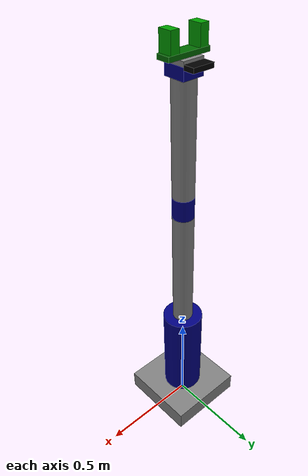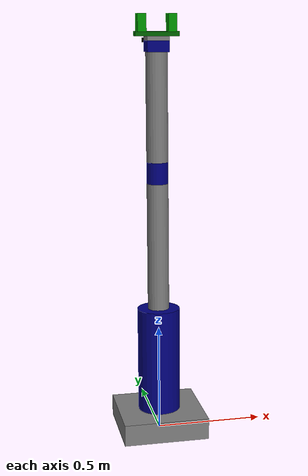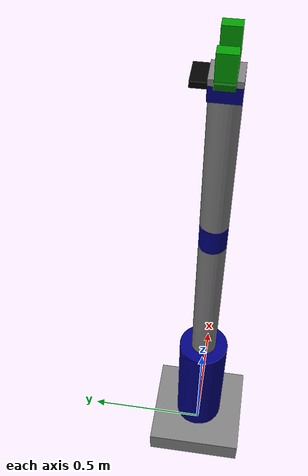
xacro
<?xml version="1.0"?>
<robot xmlns:xacro="http://www.ros.org/wiki/xacro" name="my_robot">
    <xacro:arg name="initial_positions_file" default="initial_positions.yaml" />

    <!-- Import my_robot urdf file -->
    <xacro:include filename="$(find myrobot_description)/urdf/my_robot.urdf.xacro" />

    <!-- Import control_xacro -->
    <xacro:include filename="my_robot.ros2_control.xacro" />

    <xacro:my_robot_ros2_control name="FakeSystem" initial_positions_file="$(arg initial_positions_file)"/>

</robot>

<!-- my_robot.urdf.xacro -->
<robot name="my_robot" xmlns:xacro="http://www.ros.org/wiki/xacro">

<xacro:include filename="$(find myrobot_description)/urdf/common_properties.xacro" />
<xacro:include filename="$(find myrobot_description)/urdf/arm.xacro" />
<xacro:include filename="$(find myrobot_description)/urdf/gripper.xacro" />
<xacro:include filename="$(find myrobot_description)/urdf/gazebo.xacro" />
<xacro:include filename="$(find myrobot_description)/urdf/camera.xacro" />

    <link name="world"/>

    <joint name="fixed" type="fixed">
        <parent link="world"/>
        <child link="base_link"/>
    </joint>

    <joint name="gripper_base_joint" type="fixed">
        <parent link="tool_link" />
        <child link="gripper_base_link" />
        <origin xyz="0 0 0" rpy="0 0 0" />
    </joint>

     <joint name="camera_joint" type="fixed">
        <parent link="hand_link" />
        <child link="camera_link" />
        <origin xyz="0.0 0.075 0.0" rpy="${-pi/2} ${-pi/2} 0.0" />
    </joint>

</robot>

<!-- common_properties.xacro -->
<robot xmlns:xacro="http://www.ros.org/wiki/xacro">

    <material name="gray">
        <color rgba="0.5 0.5 0.5 1" />
    </material>

    <material name="blue">
        <color rgba="0 0 0.5 1" />
    </material>

    <material name="dark_green">
        <color rgba="0 0.4 0 1" />
    </material>

    <material name="Light_green">
        <color rgba="0 0.6 0 1" />
    </material>

    <material name="black">
        <color rgba="0.0 0.0 0.0 1.0" />
    </material>

</robot>

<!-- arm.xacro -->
<robot xmlns:xacro="http://www.ros.org/wiki/xacro">

    <link name="base_link">
        <visual>
            <geometry>
                <box size="0.4 0.4 0.1"/>
            </geometry>
            <origin xyz="0 0 0.05" rpy="0 0 0" />
            <material name="gray" />
        </visual>
        <collision>
           <geometry>
                <box size="0.4 0.4 0.1"/>
            </geometry>
            <origin xyz="0 0 0.05" rpy="0 0 0" />
        </collision>
        <inertial>
            <mass value="4.32" />
            <inertia ixx="0.058" ixy="0" ixz="0" iyy="0.058" iyz="0" izz="0.115" />
            <origin xyz="0 0 0.05" />
        </inertial>

    </link>

    <link name="shoulder_link">
        <visual>
            <geometry>
                <cylinder radius="0.1" length="0.5"/>
            </geometry>
            <origin xyz="0 0 0.25" rpy="0 0 0" />
            <material name="blue" />
        </visual>
        <collision>
           <geometry>
                <box size="0.2 0.2 0.5" />
            </geometry>
            <origin xyz="0 0 0.25" rpy="0 0 0" />
        </collision>
        <inertial>
            <mass value="4.24" />
            <inertia ixx="0.089" ixy="0" ixz="0" iyy="0.089" iyz="0" izz="0.043" />
            <origin xyz="0 0 0.25" />
        </inertial>
    </link>

    <link name="arm_link">
        <visual>
            <geometry>
                <cylinder radius="0.05" length="0.6" />
            </geometry>
            <origin xyz="0 0 0.3" rpy="0 0 0" />
            <material name="gray" />
        </visual>
        <collision>
           <geometry>
                <box size="0.1 0.1 0.6" />
            </geometry>
            <origin xyz="0 0 0.3" rpy="0 0 0" />
        </collision>
        <inertial>
            <mass value="1.27" />
            <inertia ixx="0.038" ixy="0" ixz="0" iyy="0.038" iyz="0" izz="0.0016" />
            <origin xyz="0 0 0.3" />
        </inertial>
    </link>

    <link name="elbow_link">
         <visual>
            <geometry>
                <cylinder radius="0.05" length="0.1" />
            </geometry>
            <origin xyz="0 0 0.05" rpy="0 0 0" />
            <material name="blue" />
        </visual>
        <collision>
            <geometry>
                <box size="0.1 0.1 0.1" />
            </geometry>
            <origin xyz="0 0 0.05" rpy="0 0 0" />
        </collision>
        <inertial>
            <mass value="0.21" />
            <inertia ixx="0.00035" ixy="0" ixz="0" iyy="0.00035" iyz="0" izz="0.00018" />
            <origin xyz="0 0 0.05" />
        </inertial>
    </link>

    <link name="forearm_link">
         <visual>
            <geometry>
                <cylinder radius="0.05" length="0.5" />
            </geometry>
            <origin xyz="0 0 0.25" rpy="0 0 0" />
            <material name="gray" />
        </visual>
        <collision>
            <geometry>
                <box size="0.1 0.1 0.5" />
            </geometry>
            <origin xyz="0 0 0.25" rpy="0 0 0" />
        </collision>
        <inertial>
            <mass value="1.06" />
            <inertia ixx="0.022" ixy="0" ixz="0" iyy="0.022" iyz="0" izz="0.0013" />
            <origin xyz="0 0 0.25" />
        </inertial>
    </link>

    <link name="wrist_link">
         <visual>
            <geometry>
                <box size="0.1 0.1 0.05" />
            </geometry>
            <origin xyz="0 0 0.025" rpy="0 0 0" />
            <material name="blue" />
        </visual>
        <collision>
           <geometry>
                <box size="0.1 0.1 0.05" />
            </geometry>
            <origin xyz="0 0 0.025" rpy="0 0 0" />
        </collision>
        <inertial>
            <mass value="0.135" />
            <inertia ixx="0.00011" ixy="0" ixz="0" iyy="0.00011" iyz="0" izz="0.00023" />
            <origin xyz="0 0 0.025" />
        </inertial>
    </link>

    <link name="hand_link">
         <visual>
            <geometry>
                <box size="0.1 0.1 0.02" />
            </geometry>
            <origin xyz="0 0 0.01" rpy="0 0 0" />
            <material name="gray" />
        </visual>
        <collision>
           <geometry>
                <box size="0.1 0.1 0.02" />
            </geometry>
            <origin xyz="0 0 0.01" rpy="0 0 0" />
        </collision>
        <inertial>
            <mass value="0.054" />
            <inertia ixx="0.0000045" ixy="0" ixz="0" iyy="0.0000045" iyz="0" izz="0.000009" />
            <origin xyz="0 0 0.01" />
        </inertial>
    </link>

    <link name="tool_link">
        <inertial>
            <mass value="0.01" />
            <inertia ixx="0.000001" ixy="0" ixz="0" iyy="0.000001" iyz="0" izz="0.000001" />
            <origin xyz="0 0 0" />
        </inertial>
    </link>

    <joint name="joint1" type="revolute">
        <parent link="base_link" />
        <child link="shoulder_link" />
        <origin xyz="0 0 0.1" rpy="0 0 0" />
        <axis xyz="0 0 1" />
        <limit effort="1000.0" velocity="1.0" lower="-3.14" upper="3.14" />
    </joint>

    <joint name="joint2" type="revolute">
        <parent link="shoulder_link" />
        <child link="arm_link" />
        <origin xyz="0 0 0.5" rpy="0 0 0" />
        <axis xyz="0 1 0" />
        <limit effort="1000.0" velocity="1.0" lower="0" upper="2.5" />
    </joint>

    <joint name="joint3" type="revolute">
        <parent link="arm_link" />
        <child link="elbow_link" />
        <origin xyz="0 0 0.6" rpy="0 0 0" />
        <axis xyz="0 1 0" />
        <limit effort="1000.0" velocity="1.0" lower="0" upper="2.5" />
    </joint>

    <joint name="joint4" type="revolute">
        <parent link="elbow_link" />
        <child link="forearm_link" />
        <origin xyz="0 0 0.1" rpy="0 0 0" />
        <axis xyz="0 0 1" />
        <limit effort="1000.0" velocity="1.0" lower="-3.14" upper="3.14" />
    </joint>

    <joint name="joint5" type="revolute">
        <parent link="forearm_link" />
        <child link="wrist_link" />
        <origin xyz="0 0 0.5" rpy="0 0 0" />
        <axis xyz="0 1 0" />
        <limit effort="1000.0" velocity="1.0" lower="-1.57" upper="1.57" />
    </joint>

    <joint name="joint6" type="continuous">
        <parent link="wrist_link" />
        <child link="hand_link" />
        <origin xyz="0 0 0.05" rpy="0 0 0" />
        <axis xyz="0 0 1" />
    </joint>

    <joint name="hand_tool_joint" type="fixed">
        <parent link="hand_link" />
        <child link="tool_link" />
        <origin xyz="0 0 0.02" rpy="0 0 0" />
    </joint>
</robot>

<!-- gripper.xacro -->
<robot xmlns:xacro="http://www.ros.org/wiki/xacro">

    <link name="gripper_base_link">
        <visual>
            <geometry>
                <box size="0.2 0.06 0.02" />
            </geometry>
            <origin xyz="0 0 0.01" rpy="0 0 0" />
            <material name="dark_green" />
        </visual>
        <collision>
           <geometry>
                <box size="0.2 0.06 0.02" />
            </geometry>
            <origin xyz="0 0 0.01" rpy="0 0 0" />
        </collision>
        <inertial>
            <mass value="0.0648" />
            <inertia ixx="0.000021" ixy="0" ixz="0" iyy="0.000216" iyz="0" izz="0.000216" />
            <origin xyz="0 0 0.01" />
        </inertial>
    </link>

    <link name="gripper_left_finger_link">
        <visual>
            <geometry>
                <box size="0.04 0.06 0.08" />
            </geometry>
            <origin xyz="0 0 0.04" rpy="0 0 0" />
            <material name="Light_green" />
        </visual>
        <collision>
            <geometry>
                <box size="0.04 0.06 0.08" />
            </geometry>
            <origin xyz="0 0 0.04" rpy="0 0 0" />
        </collision>
        <inertial>
            <mass value="0.05" />
            <inertia ixx="0.0000417" ixy="0" ixz="0" iyy="0.0000333" iyz="0" izz="0.0000217" />
            <origin xyz="0 0 0.04" />
        </inertial>
    </link>

     <link name="gripper_right_finger_link">
        <visual>
            <geometry>
                <box size="0.04 0.06 0.08" />
            </geometry>
            <origin xyz="0 0 0.04" rpy="0 0 0" />
            <material name="Light_green" />
        </visual>
        <collision>
            <geometry>
                <box size="0.04 0.06 0.08" />
            </geometry>
            <origin xyz="0 0 0.04" rpy="0 0 0" />
        </collision>
        <inertial>
            <mass value="0.05" />
            <inertia ixx="0.0000417" ixy="0" ixz="0" iyy="0.0000333" iyz="0" izz="0.0000217" />
            <origin xyz="0 0 0.04" />
        </inertial>
    </link>

    <joint name="gripper_left_finger_joint" type="prismatic">
        <parent link="gripper_base_link" />
        <child link="gripper_left_finger_link" />
        <origin xyz="-0.07 0 0.02" rpy="0 0 0" />
        <axis xyz="1 0 0" />
        <limit effort="1000.0" velocity="1.0" lower="0.0" upper="0.06" />
    </joint>

    <joint name="gripper_right_finger_joint" type="prismatic">
        <parent link="gripper_base_link" />
        <child link="gripper_right_finger_link" />
        <origin xyz="0.07 0 0.02" rpy="0 0 0" />
        <axis xyz="1 0 0" />
        <mimic joint="gripper_left_finger_joint" multiplier="-1.0" />
        <limit effort="1000.0" velocity="1.0" lower="-0.06" upper="0" />
    </joint>

</robot>

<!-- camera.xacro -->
<robot xmlns:xacro="http://www.ros.org/wiki/xacro">
    <link name="camera_link" >
        <visual>
            <geometry>
                <box size="0.02 0.10 0.05"/>
            </geometry>
            <origin xyz="0.0 0.0 0.0" rpy="0.0 0.0 0.0" />
            <material name="black" />
        </visual>

        <collision>
            <geometry>
                <box size="0.02 0.10 0.05"/>
            </geometry>
            <origin xyz="0.0 0.0 0.0" rpy="0.0 0.0 0.0" />
        </collision>

        <inertial>
            <mass value="0.10" />
            <inertia ixx="0.0000867" ixy="0.0" ixz="0.0" iyy="0.0000242" iyz="0.0" izz="0.0001042" />
            <origin xyz="0 0 0.01" />
        </inertial>
    </link>

    <link name="camera_optical_link" >    </link>

    <joint name="camera_optical_joint" type="fixed">
        <parent link="camera_link" />
        <child link="camera_optical_link" />
        <origin xyz="0 0 0" rpy="${-pi/2} 0.0 ${pi/2}" />
    </joint>
</robot>
